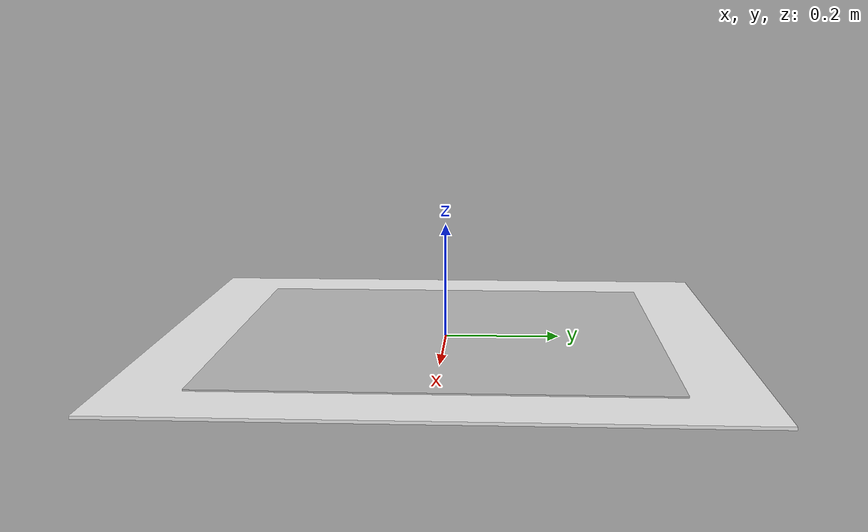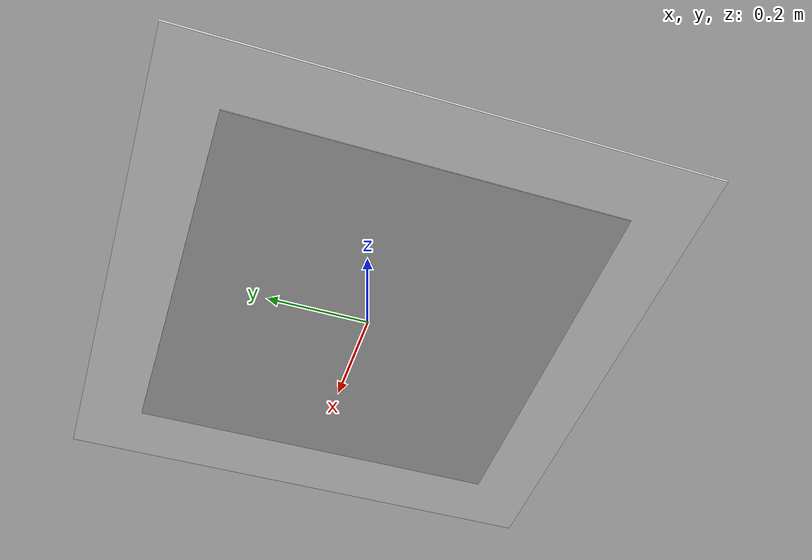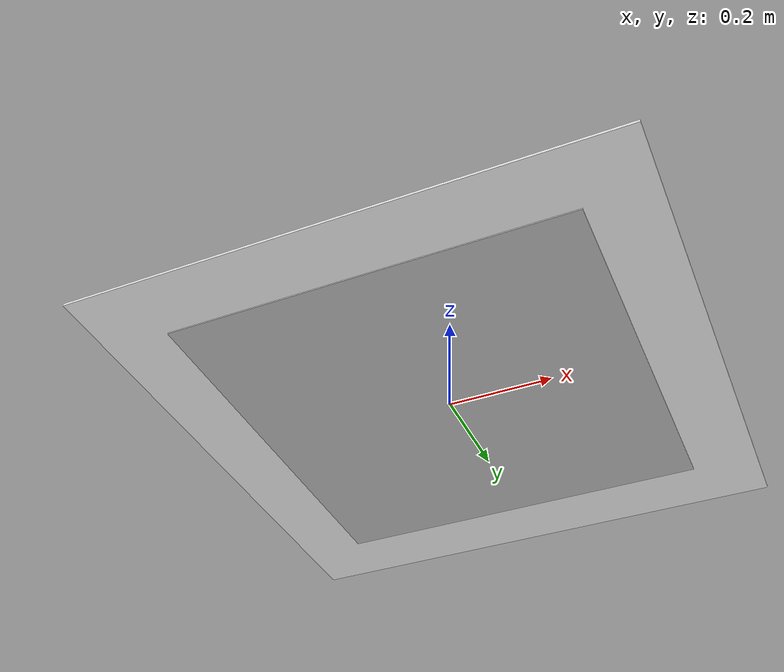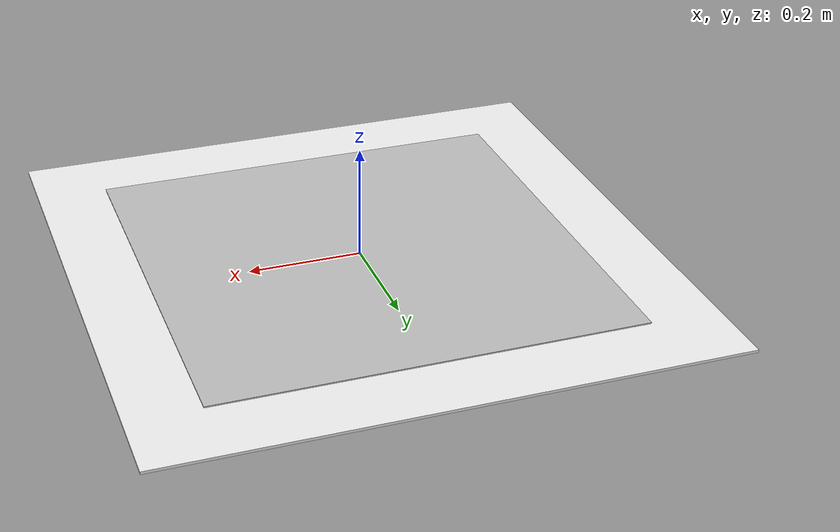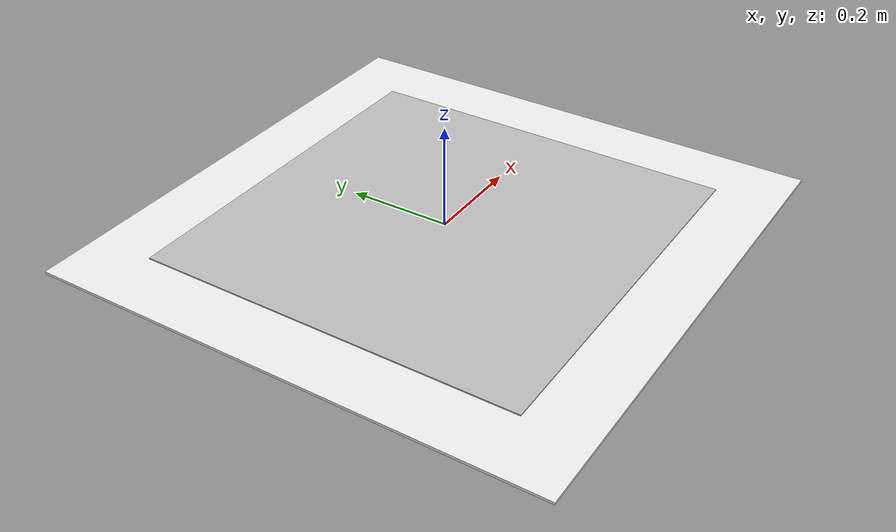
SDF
<?xml version="1.0"?>
<sdf version="1.6">
  <model name="aruco_marker_flat">

	<!-- Attach a landing board -->
	<link name="board_link">
		<gravity>0</gravity>
		<visual name="board_visual">
			<pose>-0.00005 0 0 0 0 0</pose>
			<geometry>
			  <box>
				<size>1.0 1.0 0.005</size>
			  </box>
			</geometry>
			<material>
			  <script>
				<uri>model://aruco_marker_flat/materials/scripts</uri>
				<uri>model://aruco_marker_flat/materials/textures</uri>
				<name>marker/white</name>
			  </script>
			</material>

		</visual>
	</link>

    <link name="aruco_link">
	  <gravity>0</gravity>
      <inertial>
        <pose>0 0 0 0 0 0</pose>
        <mass>10.001</mass>
        <inertia>
          <ixx>1.8750008333333333e-06</ixx>
          <ixy>0.0</ixy>
          <ixz>0.0</ixz>
          <iyy>1.8750008333333333e-06</iyy>
          <iyz>0.0</iyz>
          <izz>3.7499999999999997e-06</izz>
        </inertia>
      </inertial>
      <visual name="visual">
        <pose>-0.00005 0 0 0 0 0</pose>
        <geometry>
          <box>
            <size>0.75 0.75 0.01</size>
          </box>
        </geometry>
        <material>
          <script>
            <uri>model://aruco_marker_flat/materials/scripts</uri>
            <uri>model://aruco_marker_flat/materials/textures</uri>
            <name>marker120</name>
          </script>
        </material>
      </visual>
      <!-- Hide the marker from the back -->
      <collision name="collision">
        <pose>0 0 0 0 0 0</pose>
        <geometry>
          <box>
            <size>0.75 0.75 0.001</size>
          </box>
        </geometry>
      </collision>
    </link>

	<!-- Attach an ArUco tag to the landing board-->
  </model>
</sdf>
